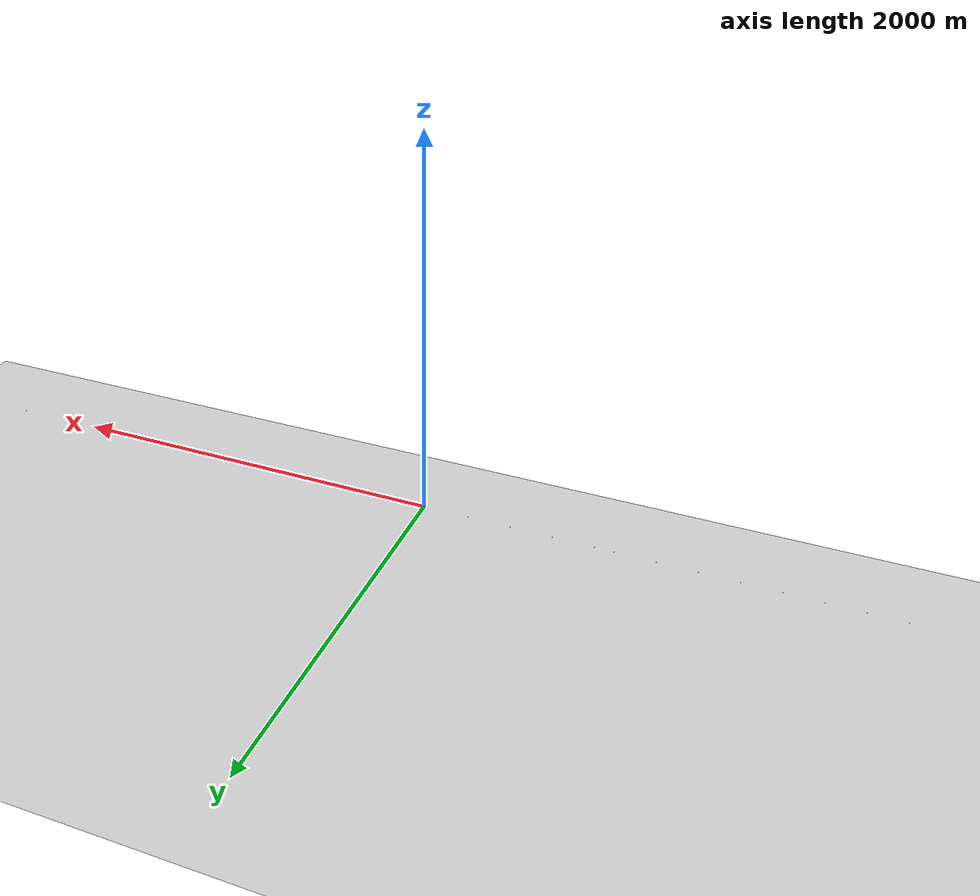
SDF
<?xml version="1.0" ?>
<sdf version="1.6">
  <world name="line_world">
    <include>
      <uri>model://ground_plane</uri>
    </include>
    <include>
      <uri>model://sun</uri>
    </include>

    <!-- Black strip (the line) -->
    <model name="line_track">
      <static>true</static>
      <link name="track">
        <visual name="line_visual">
          <geometry>
            <box>
              <size>5000 0.1 0.01</size>
            </box>
          </geometry>
          <material>
            <ambient>0 0 0 1</ambient>
            <diffuse>0 0 0 1</diffuse>
          </material>
        </visual>
        <collision name="line_collision">
          <geometry>
            <box>
              <size>5 0.1 0.01</size>
            </box>
          </geometry>
        </collision>
      </link>
    </model>

  </world>
</sdf>
